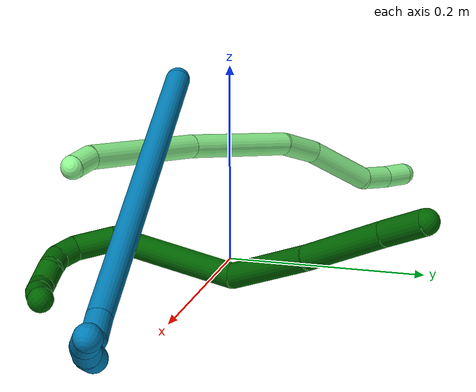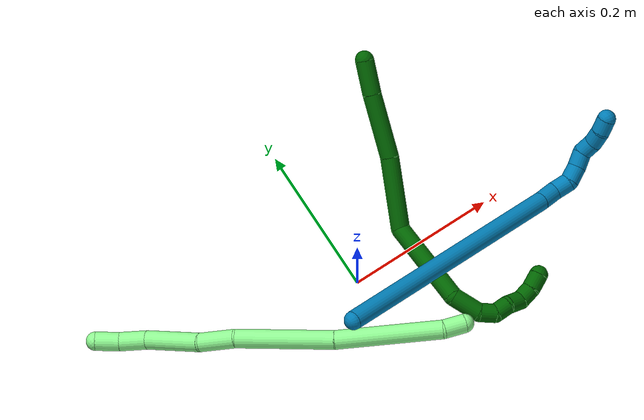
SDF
<sdf version="1.7">
 <world name="default">
  <model name="photoneo_s_sensor">
   <static>1</static>
   <pose>0 0 2 1.57079 1.57079 3.14159</pose>
   <link name="link">
    <inertial><mass>0.1</mass></inertial>
    <sensor name="sensor" type="depth">
     <update_rate>30</update_rate>
     <camera>
      <horizontal_fov>1.22</horizontal_fov>
      <image><width>1920</width><height>1200</height><format>B8G8R8</format></image>
      <clip><near>0.1</near><far>4</far></clip>
      <depth_camera><output>points</output></depth_camera>
     </camera>
     <plugin name="camera_plugin" filename="libgazebo_ros_depth_camera.so">
      <baseline>0.2</baseline>
      <alwaysOn>1</alwaysOn>
      <updateRate>0.0</updateRate>
      <cameraName>camera_ir</cameraName>
      <imageTopicName>/camera/color/image_raw</imageTopicName>
      <cameraInfoTopicName>/camera/color/camera_info</cameraInfoTopicName>
      <depthImageTopicName>/camera/depth/image_raw</depthImageTopicName>
      <depthImageCameraInfoTopicName>/camera/depth/camera_info</depthImageCameraInfoTopicName>
      <pointCloudTopicName>/camera/depth/points</pointCloudTopicName>
      <frameName>fr_optical</frameName>
      <pointCloudCutoff>0.1</pointCloudCutoff>
      <pointCloudCutoffMax>2.0</pointCloudCutoffMax>
      <distortionK1>0</distortionK1>
      <distortionK2>0</distortionK2>
      <distortionK3>0</distortionK3>
      <distortionT1>0</distortionT1>
      <distortionT2>0</distortionT2>
      <CxPrime>0</CxPrime>
      <Cx>0</Cx>
      <Cy>0</Cy>
      <focalLength>0</focalLength>
      <hackBaseline>0</hackBaseline>
     </plugin>
    </sensor>
   </link>
  </model>
  <model name="bin">
   <static>1</static>
   <link name="bottom">
    <collision name="collision-bottom">
     <pose>0 0 -0.01 0 -0 0</pose>
     <geometry><box><size>0.8 0.6 0.02</size></box></geometry>
     <surface>
      <friction><ode><mu>100</mu><mu2>100</mu2></ode></friction>
      <contact><collide_bitmask>65535</collide_bitmask></contact>
     </surface>
    </collision>
   </link>
   <link name="west_wall">
    <collision name="collision-west_wall">
     <pose>-0.41 0 0.1 0 -0 0</pose>
     <geometry><box><size>0.02 0.6 0.2</size></box></geometry>
     <surface>
      <friction><ode><mu>100</mu><mu2>100</mu2></ode></friction>
      <contact><collide_bitmask>65535</collide_bitmask></contact>
     </surface>
    </collision>
   </link>
   <link name="east_wall">
    <collision name="collision-east_wall">
     <pose>0.41 0 0.1 0 -0 0</pose>
     <geometry><box><size>0.02 0.6 0.2</size></box></geometry>
     <surface>
      <friction><ode><mu>100</mu><mu2>100</mu2></ode></friction>
      <contact><collide_bitmask>65535</collide_bitmask></contact>
     </surface>
    </collision>
   </link>
   <link name="south_wall">
    <collision name="collision-south_wall">
     <pose>0 -0.31 0.1 0 -0 0</pose>
     <geometry><box><size>0.8 0.02 0.2</size></box></geometry>
     <surface>
      <friction><ode><mu>100</mu><mu2>100</mu2></ode></friction>
      <contact><collide_bitmask>65535</collide_bitmask></contact>
     </surface>
    </collision>
   </link>
   <link name="north_wall">
    <collision name="collision-north_wall">
     <pose>0 0.31 0.1 0 -0 0</pose>
     <geometry><box><size>0.8 0.02 0.2</size></box></geometry>
     <surface>
      <friction><ode><mu>100</mu><mu2>100</mu2></ode></friction>
      <contact><collide_bitmask>65535</collide_bitmask></contact>
     </surface>
    </collision>
   </link>
  </model>
  <model name="6">
   <static>0</static>
   <link name="6">
    <collision name="collision-cylinder-e_1_1_4">
     <pose>-0.006928 -0.010879 -0.019028 2.6222 -0.306144 -1.05216</pose>
     <geometry><cylinder><radius>0.0125</radius><length>0.045975</length></cylinder></geometry>
     <surface>
      <friction><ode><mu>1.16</mu><mu2>1.16</mu2><slip1>0</slip1><slip2>0</slip2></ode></friction>
      <contact><ode><kp>1e+06</kp><kd>1</kd><max_vel>0</max_vel><min_depth>0.001</min_depth></ode></contact>
     </surface>
    </collision>
    <visual name="visual-cylinder-e_1_1_4">
     <pose>-0.006928 -0.010879 -0.019028 2.6222 -0.306144 -1.05216</pose>
     <geometry><cylinder><radius>0.0125</radius><length>0.045975</length></cylinder></geometry>
     <material><ambient>0 0.392157 0.003922 1</ambient></material>
    </visual>
    <collision name="collision-cylinder-e_2_4_5">
     <pose>-0.024812 -0.041335 -0.075236 2.65695 -0.255057 -0.957074</pose>
     <geometry><cylinder><radius>0.0125</radius><length>0.086847</length></cylinder></geometry>
     <surface>
      <friction><ode><mu>1.16</mu><mu2>1.16</mu2><slip1>0</slip1><slip2>0</slip2></ode></friction>
      <contact><ode><kp>1e+06</kp><kd>1</kd><max_vel>0</max_vel><min_depth>0.001</min_depth></ode></contact>
     </surface>
    </collision>
    <visual name="visual-cylinder-e_2_4_5">
     <pose>-0.024812 -0.041335 -0.075236 2.65695 -0.255057 -0.957074</pose>
     <geometry><cylinder><radius>0.0125</radius><length>0.086847</length></cylinder></geometry>
     <material><ambient>0 0.392157 0.003922 1</ambient></material>
    </visual>
    <collision name="collision-cylinder-e_3_5_6">
     <pose>-0.053001 -0.085032 -0.15099 2.58277 -0.362098 -1.13579</pose>
     <geometry><cylinder><radius>0.0125</radius><length>0.0973</length></cylinder></geometry>
     <surface>
      <friction><ode><mu>1.16</mu><mu2>1.16</mu2><slip1>0</slip1><slip2>0</slip2></ode></friction>
      <contact><ode><kp>1e+06</kp><kd>1</kd><max_vel>0</max_vel><min_depth>0.001</min_depth></ode></contact>
     </surface>
    </collision>
    <visual name="visual-cylinder-e_3_5_6">
     <pose>-0.053001 -0.085032 -0.15099 2.58277 -0.362098 -1.13579</pose>
     <geometry><cylinder><radius>0.0125</radius><length>0.0973</length></cylinder></geometry>
     <material><ambient>0 0.392157 0.003922 1</ambient></material>
    </visual>
    <collision name="collision-cylinder-e_4_6_7">
     <pose>-0.05392 -0.158903 -0.221415 2.14025 0.269463 0.485686</pose>
     <geometry><cylinder><radius>0.0125</radius><length>0.122567</length></cylinder></geometry>
     <surface>
      <friction><ode><mu>1.16</mu><mu2>1.16</mu2><slip1>0</slip1><slip2>0</slip2></ode></friction>
      <contact><ode><kp>1e+06</kp><kd>1</kd><max_vel>0</max_vel><min_depth>0.001</min_depth></ode></contact>
     </surface>
    </collision>
    <visual name="visual-cylinder-e_4_6_7">
     <pose>-0.05392 -0.158903 -0.221415 2.14025 0.269463 0.485686</pose>
     <geometry><cylinder><radius>0.0125</radius><length>0.122567</length></cylinder></geometry>
     <material><ambient>0 0.392157 0.003922 1</ambient></material>
    </visual>
    <collision name="collision-cylinder-e_5_7_8">
     <pose>-0.02838 -0.215314 -0.26933 2.74857 0.487737 1.79199</pose>
     <geometry><cylinder><radius>0.0125</radius><length>0.039373</length></cylinder></geometry>
     <surface>
      <friction><ode><mu>1.16</mu><mu2>1.16</mu2><slip1>0</slip1><slip2>0</slip2></ode></friction>
      <contact><ode><kp>1e+06</kp><kd>1</kd><max_vel>0</max_vel><min_depth>0.001</min_depth></ode></contact>
     </surface>
    </collision>
    <visual name="visual-cylinder-e_5_7_8">
     <pose>-0.02838 -0.215314 -0.26933 2.74857 0.487737 1.79199</pose>
     <geometry><cylinder><radius>0.0125</radius><length>0.039373</length></cylinder></geometry>
     <material><ambient>0 0.392157 0.003922 1</ambient></material>
    </visual>
    <collision name="collision-cylinder-e_6_8_9">
     <pose>-0.010977 -0.221204 -0.292861 -3.03869 0.828198 -2.90832</pose>
     <geometry><cylinder><radius>0.0125</radius><length>0.0222</length></cylinder></geometry>
     <surface>
      <friction><ode><mu>1.16</mu><mu2>1.16</mu2><slip1>0</slip1><slip2>0</slip2></ode></friction>
      <contact><ode><kp>1e+06</kp><kd>1</kd><max_vel>0</max_vel><min_depth>0.001</min_depth></ode></contact>
     </surface>
    </collision>
    <visual name="visual-cylinder-e_6_8_9">
     <pose>-0.010977 -0.221204 -0.292861 -3.03869 0.828198 -2.90832</pose>
     <geometry><cylinder><radius>0.0125</radius><length>0.0222</length></cylinder></geometry>
     <material><ambient>0 0.392157 0.003922 1</ambient></material>
    </visual>
    <collision name="collision-cylinder-e_7_9_10">
     <pose>0.005592 -0.215173 -0.302873 -2.02168 0.962557 -1.38915</pose>
     <geometry><cylinder><radius>0.0125</radius><length>0.020451</length></cylinder></geometry>
     <surface>
      <friction><ode><mu>1.16</mu><mu2>1.16</mu2><slip1>0</slip1><slip2>0</slip2></ode></friction>
      <contact><ode><kp>1e+06</kp><kd>1</kd><max_vel>0</max_vel><min_depth>0.001</min_depth></ode></contact>
     </surface>
    </collision>
    <visual name="visual-cylinder-e_7_9_10">
     <pose>0.005592 -0.215173 -0.302873 -2.02168 0.962557 -1.38915</pose>
     <geometry><cylinder><radius>0.0125</radius><length>0.020451</length></cylinder></geometry>
     <material><ambient>0 0.392157 0.003922 1</ambient></material>
    </visual>
    <collision name="collision-cylinder-e_8_10_11">
     <pose>0.020826 -0.203056 -0.312041 -2.33868 0.622512 -1.29701</pose>
     <geometry><cylinder><radius>0.0125</radius><length>0.023468</length></cylinder></geometry>
     <surface>
      <friction><ode><mu>1.16</mu><mu2>1.16</mu2><slip1>0</slip1><slip2>0</slip2></ode></friction>
      <contact><ode><kp>1e+06</kp><kd>1</kd><max_vel>0</max_vel><min_depth>0.001</min_depth></ode></contact>
     </surface>
    </collision>
    <visual name="visual-cylinder-e_8_10_11">
     <pose>0.020826 -0.203056 -0.312041 -2.33868 0.622512 -1.29701</pose>
     <geometry><cylinder><radius>0.0125</radius><length>0.023468</length></cylinder></geometry>
     <material><ambient>0 0.392157 0.003922 1</ambient></material>
    </visual>
    <collision name="collision-cylinder-e_9_11_12">
     <pose>0.036421 -0.191025 -0.318312 -1.50305 1.03594 -0.978635</pose>
     <geometry><cylinder><radius>0.0125</radius><length>0.020348</length></cylinder></geometry>
     <surface>
      <friction><ode><mu>1.16</mu><mu2>1.16</mu2><slip1>0</slip1><slip2>0</slip2></ode></friction>
      <contact><ode><kp>1e+06</kp><kd>1</kd><max_vel>0</max_vel><min_depth>0.001</min_depth></ode></contact>
     </surface>
    </collision>
    <visual name="visual-cylinder-e_9_11_12">
     <pose>0.036421 -0.191025 -0.318312 -1.50305 1.03594 -0.978635</pose>
     <geometry><cylinder><radius>0.0125</radius><length>0.020348</length></cylinder></geometry>
     <material><ambient>0 0.392157 0.003922 1</ambient></material>
    </visual>
    <collision name="collision-cylinder-e_10_12_2">
     <pose>0.053218 -0.179103 -0.315723 -1.25055 0.847063 -0.62927</pose>
     <geometry><cylinder><radius>0.0125</radius><length>0.021471</length></cylinder></geometry>
     <surface>
      <friction><ode><mu>1.16</mu><mu2>1.16</mu2><slip1>0</slip1><slip2>0</slip2></ode></friction>
      <contact><ode><kp>1e+06</kp><kd>1</kd><max_vel>0</max_vel><min_depth>0.001</min_depth></ode></contact>
     </surface>
    </collision>
    <visual name="visual-cylinder-e_10_12_2">
     <pose>0.053218 -0.179103 -0.315723 -1.25055 0.847063 -0.62927</pose>
     <geometry><cylinder><radius>0.0125</radius><length>0.021471</length></cylinder></geometry>
     <material><ambient>0 0.392157 0.003922 1</ambient></material>
    </visual>
    <collision name="collision-sphere-2">
     <pose>0.061263 -0.172356 -0.313485 0 -0 0</pose>
     <geometry><sphere><radius>0.0125</radius></sphere></geometry>
     <surface>
      <friction><ode><mu>1.16</mu><mu2>1.16</mu2><slip1>0</slip1><slip2>0</slip2></ode></friction>
      <contact><ode><kp>1e+06</kp><kd>1</kd><max_vel>0</max_vel><min_depth>0.001</min_depth></ode></contact>
     </surface>
    </collision>
    <visual name="visual-sphere-2">
     <pose>0.061263 -0.172356 -0.313485 0 -0 0</pose>
     <geometry><sphere><radius>0.0125</radius></sphere></geometry>
     <material><ambient>0 0.392157 0.003922 1</ambient></material>
    </visual>
    <collision name="collision-sphere-12">
     <pose>0.045174 -0.185851 -0.317961 0 -0 0</pose>
     <geometry><sphere><radius>0.0125</radius></sphere></geometry>
     <surface>
      <friction><ode><mu>1.16</mu><mu2>1.16</mu2><slip1>0</slip1><slip2>0</slip2></ode></friction>
      <contact><ode><kp>1e+06</kp><kd>1</kd><max_vel>0</max_vel><min_depth>0.001</min_depth></ode></contact>
     </surface>
    </collision>
    <visual name="visual-sphere-12">
     <pose>0.045174 -0.185851 -0.317961 0 -0 0</pose>
     <geometry><sphere><radius>0.0125</radius></sphere></geometry>
     <material><ambient>0 0.392157 0.003922 1</ambient></material>
    </visual>
    <collision name="collision-sphere-11">
     <pose>0.027668 -0.196199 -0.318663 0 -0 0</pose>
     <geometry><sphere><radius>0.0125</radius></sphere></geometry>
     <surface>
      <friction><ode><mu>1.16</mu><mu2>1.16</mu2><slip1>0</slip1><slip2>0</slip2></ode></friction>
      <contact><ode><kp>1e+06</kp><kd>1</kd><max_vel>0</max_vel><min_depth>0.001</min_depth></ode></contact>
     </surface>
    </collision>
    <visual name="visual-sphere-11">
     <pose>0.027668 -0.196199 -0.318663 0 -0 0</pose>
     <geometry><sphere><radius>0.0125</radius></sphere></geometry>
     <material><ambient>0 0.392157 0.003922 1</ambient></material>
    </visual>
    <collision name="collision-sphere-10">
     <pose>0.013984 -0.209914 -0.30542 0 -0 0</pose>
     <geometry><sphere><radius>0.0125</radius></sphere></geometry>
     <surface>
      <friction><ode><mu>1.16</mu><mu2>1.16</mu2><slip1>0</slip1><slip2>0</slip2></ode></friction>
      <contact><ode><kp>1e+06</kp><kd>1</kd><max_vel>0</max_vel><min_depth>0.001</min_depth></ode></contact>
     </surface>
    </collision>
    <visual name="visual-sphere-10">
     <pose>0.013984 -0.209914 -0.30542 0 -0 0</pose>
     <geometry><sphere><radius>0.0125</radius></sphere></geometry>
     <material><ambient>0 0.392157 0.003922 1</ambient></material>
    </visual>
    <collision name="collision-sphere-9">
     <pose>-0.0028 -0.220433 -0.300327 0 -0 0</pose>
     <geometry><sphere><radius>0.0125</radius></sphere></geometry>
     <surface>
      <friction><ode><mu>1.16</mu><mu2>1.16</mu2><slip1>0</slip1><slip2>0</slip2></ode></friction>
      <contact><ode><kp>1e+06</kp><kd>1</kd><max_vel>0</max_vel><min_depth>0.001</min_depth></ode></contact>
     </surface>
    </collision>
    <visual name="visual-sphere-9">
     <pose>-0.0028 -0.220433 -0.300327 0 -0 0</pose>
     <geometry><sphere><radius>0.0125</radius></sphere></geometry>
     <material><ambient>0 0.392157 0.003922 1</ambient></material>
    </visual>
    <collision name="collision-sphere-4">
     <pose>-0.013856 -0.021759 -0.038056 0 -0 0</pose>
     <geometry><sphere><radius>0.0125</radius></sphere></geometry>
     <surface>
      <friction><ode><mu>1.16</mu><mu2>1.16</mu2><slip1>0</slip1><slip2>0</slip2></ode></friction>
      <contact><ode><kp>1e+06</kp><kd>1</kd><max_vel>0</max_vel><min_depth>0.001</min_depth></ode></contact>
     </surface>
    </collision>
    <visual name="visual-sphere-4">
     <pose>-0.013856 -0.021759 -0.038056 0 -0 0</pose>
     <geometry><sphere><radius>0.0125</radius></sphere></geometry>
     <material><ambient>0 0.392157 0.003922 1</ambient></material>
    </visual>
    <collision name="collision-sphere-1">
     <geometry><sphere><radius>0.0125</radius></sphere></geometry>
     <surface>
      <friction><ode><mu>1.16</mu><mu2>1.16</mu2><slip1>0</slip1><slip2>0</slip2></ode></friction>
      <contact><ode><kp>1e+06</kp><kd>1</kd><max_vel>0</max_vel><min_depth>0.001</min_depth></ode></contact>
     </surface>
    </collision>
    <visual name="visual-sphere-1">
     <geometry><sphere><radius>0.0125</radius></sphere></geometry>
     <material><ambient>0 0.392157 0.003922 1</ambient></material>
    </visual>
    <collision name="collision-sphere-8">
     <pose>-0.019154 -0.221975 -0.285395 0 -0 0</pose>
     <geometry><sphere><radius>0.0125</radius></sphere></geometry>
     <surface>
      <friction><ode><mu>1.16</mu><mu2>1.16</mu2><slip1>0</slip1><slip2>0</slip2></ode></friction>
      <contact><ode><kp>1e+06</kp><kd>1</kd><max_vel>0</max_vel><min_depth>0.001</min_depth></ode></contact>
     </surface>
    </collision>
    <visual name="visual-sphere-8">
     <pose>-0.019154 -0.221975 -0.285395 0 -0 0</pose>
     <geometry><sphere><radius>0.0125</radius></sphere></geometry>
     <material><ambient>0 0.392157 0.003922 1</ambient></material>
    </visual>
    <collision name="collision-sphere-5">
     <pose>-0.035768 -0.060911 -0.112416 0 -0 0</pose>
     <geometry><sphere><radius>0.0125</radius></sphere></geometry>
     <surface>
      <friction><ode><mu>1.16</mu><mu2>1.16</mu2><slip1>0</slip1><slip2>0</slip2></ode></friction>
      <contact><ode><kp>1e+06</kp><kd>1</kd><max_vel>0</max_vel><min_depth>0.001</min_depth></ode></contact>
     </surface>
    </collision>
    <visual name="visual-sphere-5">
     <pose>-0.035768 -0.060911 -0.112416 0 -0 0</pose>
     <geometry><sphere><radius>0.0125</radius></sphere></geometry>
     <material><ambient>0 0.392157 0.003922 1</ambient></material>
    </visual>
    <collision name="collision-sphere-6">
     <pose>-0.070235 -0.109153 -0.189565 0 -0 0</pose>
     <geometry><sphere><radius>0.0125</radius></sphere></geometry>
     <surface>
      <friction><ode><mu>1.16</mu><mu2>1.16</mu2><slip1>0</slip1><slip2>0</slip2></ode></friction>
      <contact><ode><kp>1e+06</kp><kd>1</kd><max_vel>0</max_vel><min_depth>0.001</min_depth></ode></contact>
     </surface>
    </collision>
    <visual name="visual-sphere-6">
     <pose>-0.070235 -0.109153 -0.189565 0 -0 0</pose>
     <geometry><sphere><radius>0.0125</radius></sphere></geometry>
     <material><ambient>0 0.392157 0.003922 1</ambient></material>
    </visual>
    <collision name="collision-sphere-7">
     <pose>-0.037606 -0.208654 -0.253265 0 -0 0</pose>
     <geometry><sphere><radius>0.0125</radius></sphere></geometry>
     <surface>
      <friction><ode><mu>1.16</mu><mu2>1.16</mu2><slip1>0</slip1><slip2>0</slip2></ode></friction>
      <contact><ode><kp>1e+06</kp><kd>1</kd><max_vel>0</max_vel><min_depth>0.001</min_depth></ode></contact>
     </surface>
    </collision>
    <visual name="visual-sphere-7">
     <pose>-0.037606 -0.208654 -0.253265 0 -0 0</pose>
     <geometry><sphere><radius>0.0125</radius></sphere></geometry>
     <material><ambient>0 0.392157 0.003922 1</ambient></material>
    </visual>
    <inertial>
     <pose>-0.026227 -0.124253 -0.186234 0 -0 0</pose>
     <mass>0.5</mass>
     <inertia>
      <ixx>0.000158</ixx>
      <ixy>0</ixy>
      <ixz>0</ixz>
      <iyy>-0.000156</iyy>
      <iyz>0</iyz>
      <izz>0.000168</izz>
     </inertia>
    </inertial>
   </link>
   <pose>0.157487 0.225689 0.102989 -0.721284 -0.385159 -0.162682</pose>
  </model>
  <model name="9">
   <static>0</static>
   <link name="9">
    <collision name="collision-cylinder-e_1_1_4">
     <pose>0.010659 -0.004254 0.172864 0.024606 0.061563 0.000758</pose>
     <geometry><cylinder><radius>0.0125</radius><length>0.346488</length></cylinder></geometry>
     <surface>
      <friction><ode><mu>1.16</mu><mu2>1.16</mu2><slip1>0</slip1><slip2>0</slip2></ode></friction>
      <contact><ode><kp>1e+06</kp><kd>1</kd><max_vel>0</max_vel><min_depth>0.001</min_depth></ode></contact>
     </surface>
    </collision>
    <visual name="visual-cylinder-e_1_1_4">
     <pose>0.010659 -0.004254 0.172864 0.024606 0.061563 0.000758</pose>
     <geometry><cylinder><radius>0.0125</radius><length>0.346488</length></cylinder></geometry>
     <material><ambient>0 0.490196 0.709804 1</ambient></material>
    </visual>
    <collision name="collision-cylinder-e_2_4_5">
     <pose>0.022976 -0.009307 0.359129 0.059473 0.122949 0.003662</pose>
     <geometry><cylinder><radius>0.0125</radius><length>0.027055</length></cylinder></geometry>
     <surface>
      <friction><ode><mu>1.16</mu><mu2>1.16</mu2><slip1>0</slip1><slip2>0</slip2></ode></friction>
      <contact><ode><kp>1e+06</kp><kd>1</kd><max_vel>0</max_vel><min_depth>0.001</min_depth></ode></contact>
     </surface>
    </collision>
    <visual name="visual-cylinder-e_2_4_5">
     <pose>0.022976 -0.009307 0.359129 0.059473 0.122949 0.003662</pose>
     <geometry><cylinder><radius>0.0125</radius><length>0.027055</length></cylinder></geometry>
     <material><ambient>0 0.490196 0.709804 1</ambient></material>
    </visual>
    <collision name="collision-cylinder-e_3_5_6">
     <pose>0.029357 -0.006057 0.382213 -0.395982 0.42274 -0.086043</pose>
     <geometry><cylinder><radius>0.0125</radius><length>0.023015</length></cylinder></geometry>
     <surface>
      <friction><ode><mu>1.16</mu><mu2>1.16</mu2><slip1>0</slip1><slip2>0</slip2></ode></friction>
      <contact><ode><kp>1e+06</kp><kd>1</kd><max_vel>0</max_vel><min_depth>0.001</min_depth></ode></contact>
     </surface>
    </collision>
    <visual name="visual-cylinder-e_3_5_6">
     <pose>0.029357 -0.006057 0.382213 -0.395982 0.42274 -0.086043</pose>
     <geometry><cylinder><radius>0.0125</radius><length>0.023015</length></cylinder></geometry>
     <material><ambient>0 0.490196 0.709804 1</ambient></material>
    </visual>
    <collision name="collision-cylinder-e_4_6_7">
     <pose>0.040827 -0.003578 0.400513 0.180103 0.656561 0.061491</pose>
     <geometry><cylinder><radius>0.0125</radius><length>0.022116</length></cylinder></geometry>
     <surface>
      <friction><ode><mu>1.16</mu><mu2>1.16</mu2><slip1>0</slip1><slip2>0</slip2></ode></friction>
      <contact><ode><kp>1e+06</kp><kd>1</kd><max_vel>0</max_vel><min_depth>0.001</min_depth></ode></contact>
     </surface>
    </collision>
    <visual name="visual-cylinder-e_4_6_7">
     <pose>0.040827 -0.003578 0.400513 0.180103 0.656561 0.061491</pose>
     <geometry><cylinder><radius>0.0125</radius><length>0.022116</length></cylinder></geometry>
     <material><ambient>0 0.490196 0.709804 1</ambient></material>
    </visual>
    <collision name="collision-cylinder-e_5_7_8">
     <pose>0.055977 -0.006318 0.415533 0.180956 0.911599 0.088894</pose>
     <geometry><cylinder><radius>0.0125</radius><length>0.021253</length></cylinder></geometry>
     <surface>
      <friction><ode><mu>1.16</mu><mu2>1.16</mu2><slip1>0</slip1><slip2>0</slip2></ode></friction>
      <contact><ode><kp>1e+06</kp><kd>1</kd><max_vel>0</max_vel><min_depth>0.001</min_depth></ode></contact>
     </surface>
    </collision>
    <visual name="visual-cylinder-e_5_7_8">
     <pose>0.055977 -0.006318 0.415533 0.180956 0.911599 0.088894</pose>
     <geometry><cylinder><radius>0.0125</radius><length>0.021253</length></cylinder></geometry>
     <material><ambient>0 0.490196 0.709804 1</ambient></material>
    </visual>
    <collision name="collision-cylinder-e_6_8_9">
     <pose>0.071478 -0.002779 0.427172 -0.732516 0.789373 -0.316865</pose>
     <geometry><cylinder><radius>0.0125</radius><length>0.020004</length></cylinder></geometry>
     <surface>
      <friction><ode><mu>1.16</mu><mu2>1.16</mu2><slip1>0</slip1><slip2>0</slip2></ode></friction>
      <contact><ode><kp>1e+06</kp><kd>1</kd><max_vel>0</max_vel><min_depth>0.001</min_depth></ode></contact>
     </surface>
    </collision>
    <visual name="visual-cylinder-e_6_8_9">
     <pose>0.071478 -0.002779 0.427172 -0.732516 0.789373 -0.316865</pose>
     <geometry><cylinder><radius>0.0125</radius><length>0.020004</length></cylinder></geometry>
     <material><ambient>0 0.490196 0.709804 1</ambient></material>
    </visual>
    <collision name="collision-cylinder-e_7_9_10">
     <pose>0.087341 0.005908 0.435238 -0.952506 1.06271 -0.588761</pose>
     <geometry><cylinder><radius>0.0125</radius><length>0.020059</length></cylinder></geometry>
     <surface>
      <friction><ode><mu>1.16</mu><mu2>1.16</mu2><slip1>0</slip1><slip2>0</slip2></ode></friction>
      <contact><ode><kp>1e+06</kp><kd>1</kd><max_vel>0</max_vel><min_depth>0.001</min_depth></ode></contact>
     </surface>
    </collision>
    <visual name="visual-cylinder-e_7_9_10">
     <pose>0.087341 0.005908 0.435238 -0.952506 1.06271 -0.588761</pose>
     <geometry><cylinder><radius>0.0125</radius><length>0.020059</length></cylinder></geometry>
     <material><ambient>0 0.490196 0.709804 1</ambient></material>
    </visual>
    <collision name="collision-cylinder-e_8_10_2">
     <pose>0.105233 0.011745 0.441712 -0.471831 1.14929 -0.308848</pose>
     <geometry><cylinder><radius>0.0125</radius><length>0.020009</length></cylinder></geometry>
     <surface>
      <friction><ode><mu>1.16</mu><mu2>1.16</mu2><slip1>0</slip1><slip2>0</slip2></ode></friction>
      <contact><ode><kp>1e+06</kp><kd>1</kd><max_vel>0</max_vel><min_depth>0.001</min_depth></ode></contact>
     </surface>
    </collision>
    <visual name="visual-cylinder-e_8_10_2">
     <pose>0.105233 0.011745 0.441712 -0.471831 1.14929 -0.308848</pose>
     <geometry><cylinder><radius>0.0125</radius><length>0.020009</length></cylinder></geometry>
     <material><ambient>0 0.490196 0.709804 1</ambient></material>
    </visual>
    <collision name="collision-sphere-2">
     <pose>0.114361 0.013605 0.445358 0 -0 0</pose>
     <geometry><sphere><radius>0.0125</radius></sphere></geometry>
     <surface>
      <friction><ode><mu>1.16</mu><mu2>1.16</mu2><slip1>0</slip1><slip2>0</slip2></ode></friction>
      <contact><ode><kp>1e+06</kp><kd>1</kd><max_vel>0</max_vel><min_depth>0.001</min_depth></ode></contact>
     </surface>
    </collision>
    <visual name="visual-sphere-2">
     <pose>0.114361 0.013605 0.445358 0 -0 0</pose>
     <geometry><sphere><radius>0.0125</radius></sphere></geometry>
     <material><ambient>0 0.490196 0.709804 1</ambient></material>
    </visual>
    <collision name="collision-sphere-10">
     <pose>0.096104 0.009885 0.438066 0 -0 0</pose>
     <geometry><sphere><radius>0.0125</radius></sphere></geometry>
     <surface>
      <friction><ode><mu>1.16</mu><mu2>1.16</mu2><slip1>0</slip1><slip2>0</slip2></ode></friction>
      <contact><ode><kp>1e+06</kp><kd>1</kd><max_vel>0</max_vel><min_depth>0.001</min_depth></ode></contact>
     </surface>
    </collision>
    <visual name="visual-sphere-10">
     <pose>0.096104 0.009885 0.438066 0 -0 0</pose>
     <geometry><sphere><radius>0.0125</radius></sphere></geometry>
     <material><ambient>0 0.490196 0.709804 1</ambient></material>
    </visual>
    <collision name="collision-sphere-9">
     <pose>0.078578 0.001932 0.43241 0 -0 0</pose>
     <geometry><sphere><radius>0.0125</radius></sphere></geometry>
     <surface>
      <friction><ode><mu>1.16</mu><mu2>1.16</mu2><slip1>0</slip1><slip2>0</slip2></ode></friction>
      <contact><ode><kp>1e+06</kp><kd>1</kd><max_vel>0</max_vel><min_depth>0.001</min_depth></ode></contact>
     </surface>
    </collision>
    <visual name="visual-sphere-9">
     <pose>0.078578 0.001932 0.43241 0 -0 0</pose>
     <geometry><sphere><radius>0.0125</radius></sphere></geometry>
     <material><ambient>0 0.490196 0.709804 1</ambient></material>
    </visual>
    <collision name="collision-sphere-4">
     <pose>0.021317 -0.008509 0.345727 0 -0 0</pose>
     <geometry><sphere><radius>0.0125</radius></sphere></geometry>
     <surface>
      <friction><ode><mu>1.16</mu><mu2>1.16</mu2><slip1>0</slip1><slip2>0</slip2></ode></friction>
      <contact><ode><kp>1e+06</kp><kd>1</kd><max_vel>0</max_vel><min_depth>0.001</min_depth></ode></contact>
     </surface>
    </collision>
    <visual name="visual-sphere-4">
     <pose>0.021317 -0.008509 0.345727 0 -0 0</pose>
     <geometry><sphere><radius>0.0125</radius></sphere></geometry>
     <material><ambient>0 0.490196 0.709804 1</ambient></material>
    </visual>
    <collision name="collision-sphere-1">
     <geometry><sphere><radius>0.0125</radius></sphere></geometry>
     <surface>
      <friction><ode><mu>1.16</mu><mu2>1.16</mu2><slip1>0</slip1><slip2>0</slip2></ode></friction>
      <contact><ode><kp>1e+06</kp><kd>1</kd><max_vel>0</max_vel><min_depth>0.001</min_depth></ode></contact>
     </surface>
    </collision>
    <visual name="visual-sphere-1">
     <geometry><sphere><radius>0.0125</radius></sphere></geometry>
     <material><ambient>0 0.490196 0.709804 1</ambient></material>
    </visual>
    <collision name="collision-sphere-8">
     <pose>0.064377 -0.007489 0.421935 0 -0 0</pose>
     <geometry><sphere><radius>0.0125</radius></sphere></geometry>
     <surface>
      <friction><ode><mu>1.16</mu><mu2>1.16</mu2><slip1>0</slip1><slip2>0</slip2></ode></friction>
      <contact><ode><kp>1e+06</kp><kd>1</kd><max_vel>0</max_vel><min_depth>0.001</min_depth></ode></contact>
     </surface>
    </collision>
    <visual name="visual-sphere-8">
     <pose>0.064377 -0.007489 0.421935 0 -0 0</pose>
     <geometry><sphere><radius>0.0125</radius></sphere></geometry>
     <material><ambient>0 0.490196 0.709804 1</ambient></material>
    </visual>
    <collision name="collision-sphere-5">
     <pose>0.024635 -0.010105 0.372531 0 -0 0</pose>
     <geometry><sphere><radius>0.0125</radius></sphere></geometry>
     <surface>
      <friction><ode><mu>1.16</mu><mu2>1.16</mu2><slip1>0</slip1><slip2>0</slip2></ode></friction>
      <contact><ode><kp>1e+06</kp><kd>1</kd><max_vel>0</max_vel><min_depth>0.001</min_depth></ode></contact>
     </surface>
    </collision>
    <visual name="visual-sphere-5">
     <pose>0.024635 -0.010105 0.372531 0 -0 0</pose>
     <geometry><sphere><radius>0.0125</radius></sphere></geometry>
     <material><ambient>0 0.490196 0.709804 1</ambient></material>
    </visual>
    <collision name="collision-sphere-6">
     <pose>0.034078 -0.002009 0.391896 0 -0 0</pose>
     <geometry><sphere><radius>0.0125</radius></sphere></geometry>
     <surface>
      <friction><ode><mu>1.16</mu><mu2>1.16</mu2><slip1>0</slip1><slip2>0</slip2></ode></friction>
      <contact><ode><kp>1e+06</kp><kd>1</kd><max_vel>0</max_vel><min_depth>0.001</min_depth></ode></contact>
     </surface>
    </collision>
    <visual name="visual-sphere-6">
     <pose>0.034078 -0.002009 0.391896 0 -0 0</pose>
     <geometry><sphere><radius>0.0125</radius></sphere></geometry>
     <material><ambient>0 0.490196 0.709804 1</ambient></material>
    </visual>
    <collision name="collision-sphere-7">
     <pose>0.047577 -0.005147 0.40913 0 -0 0</pose>
     <geometry><sphere><radius>0.0125</radius></sphere></geometry>
     <surface>
      <friction><ode><mu>1.16</mu><mu2>1.16</mu2><slip1>0</slip1><slip2>0</slip2></ode></friction>
      <contact><ode><kp>1e+06</kp><kd>1</kd><max_vel>0</max_vel><min_depth>0.001</min_depth></ode></contact>
     </surface>
    </collision>
    <visual name="visual-sphere-7">
     <pose>0.047577 -0.005147 0.40913 0 -0 0</pose>
     <geometry><sphere><radius>0.0125</radius></sphere></geometry>
     <material><ambient>0 0.490196 0.709804 1</ambient></material>
    </visual>
    <inertial>
     <pose>0.024741 -0.003561 0.244422 0 -0 0</pose>
     <mass>0.5</mass>
     <inertia>
      <ixx>0.003493</ixx>
      <ixy>0</ixy>
      <ixz>0</ixz>
      <iyy>0.003494</iyy>
      <iyz>0</iyz>
      <izz>-0.000103</izz>
     </inertia>
    </inertial>
   </link>
   <pose>-0.051747 -0.071218 0.172031 2.29727 -0.80245 1.02868</pose>
  </model>
  <model name="13">
   <static>0</static>
   <link name="13">
    <collision name="collision-cylinder-e_1_1_4">
     <pose>-0.001458 0.008861 0.011198 -0.669394 -0.101776 0.035423</pose>
     <geometry><cylinder><radius>0.0125</radius><length>0.028709</length></cylinder></geometry>
     <surface>
      <friction><ode><mu>1.16</mu><mu2>1.16</mu2><slip1>0</slip1><slip2>0</slip2></ode></friction>
      <contact><ode><kp>1e+06</kp><kd>1</kd><max_vel>0</max_vel><min_depth>0.001</min_depth></ode></contact>
     </surface>
    </collision>
    <visual name="visual-cylinder-e_1_1_4">
     <pose>-0.001458 0.008861 0.011198 -0.669394 -0.101776 0.035423</pose>
     <geometry><cylinder><radius>0.0125</radius><length>0.028709</length></cylinder></geometry>
     <material><ambient>0.564706 0.984314 0.572549 1</ambient></material>
    </visual>
    <collision name="collision-cylinder-e_2_4_5">
     <pose>-0.030695 0.052094 0.077128 -0.56077 -0.40594 0.118393</pose>
     <geometry><cylinder><radius>0.0125</radius><length>0.140692</length></cylinder></geometry>
     <surface>
      <friction><ode><mu>1.16</mu><mu2>1.16</mu2><slip1>0</slip1><slip2>0</slip2></ode></friction>
      <contact><ode><kp>1e+06</kp><kd>1</kd><max_vel>0</max_vel><min_depth>0.001</min_depth></ode></contact>
     </surface>
    </collision>
    <visual name="visual-cylinder-e_2_4_5">
     <pose>-0.030695 0.052094 0.077128 -0.56077 -0.40594 0.118393</pose>
     <geometry><cylinder><radius>0.0125</radius><length>0.140692</length></cylinder></geometry>
     <material><ambient>0.564706 0.984314 0.572549 1</ambient></material>
    </visual>
    <collision name="collision-cylinder-e_3_5_6">
     <pose>-0.091305 0.117066 0.178661 -0.579047 -0.530906 0.161624</pose>
     <geometry><cylinder><radius>0.0125</radius><length>0.129688</length></cylinder></geometry>
     <surface>
      <friction><ode><mu>1.16</mu><mu2>1.16</mu2><slip1>0</slip1><slip2>0</slip2></ode></friction>
      <contact><ode><kp>1e+06</kp><kd>1</kd><max_vel>0</max_vel><min_depth>0.001</min_depth></ode></contact>
     </surface>
    </collision>
    <visual name="visual-cylinder-e_3_5_6">
     <pose>-0.091305 0.117066 0.178661 -0.579047 -0.530906 0.161624</pose>
     <geometry><cylinder><radius>0.0125</radius><length>0.129688</length></cylinder></geometry>
     <material><ambient>0.564706 0.984314 0.572549 1</ambient></material>
    </visual>
    <collision name="collision-cylinder-e_4_6_7">
     <pose>-0.136749 0.154041 0.245601 -0.306601 -0.538311 0.085193</pose>
     <geometry><cylinder><radius>0.0125</radius><length>0.049202</length></cylinder></geometry>
     <surface>
      <friction><ode><mu>1.16</mu><mu2>1.16</mu2><slip1>0</slip1><slip2>0</slip2></ode></friction>
      <contact><ode><kp>1e+06</kp><kd>1</kd><max_vel>0</max_vel><min_depth>0.001</min_depth></ode></contact>
     </surface>
    </collision>
    <visual name="visual-cylinder-e_4_6_7">
     <pose>-0.136749 0.154041 0.245601 -0.306601 -0.538311 0.085193</pose>
     <geometry><cylinder><radius>0.0125</radius><length>0.049202</length></cylinder></geometry>
     <material><ambient>0.564706 0.984314 0.572549 1</ambient></material>
    </visual>
    <collision name="collision-cylinder-e_5_7_8">
     <pose>-0.177694 0.164713 0.295504 -0.143361 -0.755565 0.056974</pose>
     <geometry><cylinder><radius>0.0125</radius><length>0.082638</length></cylinder></geometry>
     <surface>
      <friction><ode><mu>1.16</mu><mu2>1.16</mu2><slip1>0</slip1><slip2>0</slip2></ode></friction>
      <contact><ode><kp>1e+06</kp><kd>1</kd><max_vel>0</max_vel><min_depth>0.001</min_depth></ode></contact>
     </surface>
    </collision>
    <visual name="visual-cylinder-e_5_7_8">
     <pose>-0.177694 0.164713 0.295504 -0.143361 -0.755565 0.056974</pose>
     <geometry><cylinder><radius>0.0125</radius><length>0.082638</length></cylinder></geometry>
     <material><ambient>0.564706 0.984314 0.572549 1</ambient></material>
    </visual>
    <collision name="collision-cylinder-e_6_8_9">
     <pose>-0.214265 0.177498 0.339528 -0.536979 -0.460859 0.128911</pose>
     <geometry><cylinder><radius>0.0125</radius><length>0.03705</length></cylinder></geometry>
     <surface>
      <friction><ode><mu>1.16</mu><mu2>1.16</mu2><slip1>0</slip1><slip2>0</slip2></ode></friction>
      <contact><ode><kp>1e+06</kp><kd>1</kd><max_vel>0</max_vel><min_depth>0.001</min_depth></ode></contact>
     </surface>
    </collision>
    <visual name="visual-cylinder-e_6_8_9">
     <pose>-0.214265 0.177498 0.339528 -0.536979 -0.460859 0.128911</pose>
     <geometry><cylinder><radius>0.0125</radius><length>0.03705</length></cylinder></geometry>
     <material><ambient>0.564706 0.984314 0.572549 1</ambient></material>
    </visual>
    <collision name="collision-cylinder-e_7_9_2">
     <pose>-0.230078 0.19458 0.36497 -0.655194 -0.492773 0.170524</pose>
     <geometry><cylinder><radius>0.0125</radius><length>0.032021</length></cylinder></geometry>
     <surface>
      <friction><ode><mu>1.16</mu><mu2>1.16</mu2><slip1>0</slip1><slip2>0</slip2></ode></friction>
      <contact><ode><kp>1e+06</kp><kd>1</kd><max_vel>0</max_vel><min_depth>0.001</min_depth></ode></contact>
     </surface>
    </collision>
    <visual name="visual-cylinder-e_7_9_2">
     <pose>-0.230078 0.19458 0.36497 -0.655194 -0.492773 0.170524</pose>
     <geometry><cylinder><radius>0.0125</radius><length>0.032021</length></cylinder></geometry>
     <material><ambient>0.564706 0.984314 0.572549 1</ambient></material>
    </visual>
    <collision name="collision-sphere-2">
     <pose>-0.237652 0.203175 0.376155 0 -0 0</pose>
     <geometry><sphere><radius>0.0125</radius></sphere></geometry>
     <surface>
      <friction><ode><mu>1.16</mu><mu2>1.16</mu2><slip1>0</slip1><slip2>0</slip2></ode></friction>
      <contact><ode><kp>1e+06</kp><kd>1</kd><max_vel>0</max_vel><min_depth>0.001</min_depth></ode></contact>
     </surface>
    </collision>
    <visual name="visual-sphere-2">
     <pose>-0.237652 0.203175 0.376155 0 -0 0</pose>
     <geometry><sphere><radius>0.0125</radius></sphere></geometry>
     <material><ambient>0.564706 0.984314 0.572549 1</ambient></material>
    </visual>
    <collision name="collision-sphere-9">
     <pose>-0.222504 0.185985 0.353786 0 -0 0</pose>
     <geometry><sphere><radius>0.0125</radius></sphere></geometry>
     <surface>
      <friction><ode><mu>1.16</mu><mu2>1.16</mu2><slip1>0</slip1><slip2>0</slip2></ode></friction>
      <contact><ode><kp>1e+06</kp><kd>1</kd><max_vel>0</max_vel><min_depth>0.001</min_depth></ode></contact>
     </surface>
    </collision>
    <visual name="visual-sphere-9">
     <pose>-0.222504 0.185985 0.353786 0 -0 0</pose>
     <geometry><sphere><radius>0.0125</radius></sphere></geometry>
     <material><ambient>0.564706 0.984314 0.572549 1</ambient></material>
    </visual>
    <collision name="collision-sphere-4">
     <pose>-0.002917 0.017722 0.022397 0 -0 0</pose>
     <geometry><sphere><radius>0.0125</radius></sphere></geometry>
     <surface>
      <friction><ode><mu>1.16</mu><mu2>1.16</mu2><slip1>0</slip1><slip2>0</slip2></ode></friction>
      <contact><ode><kp>1e+06</kp><kd>1</kd><max_vel>0</max_vel><min_depth>0.001</min_depth></ode></contact>
     </surface>
    </collision>
    <visual name="visual-sphere-4">
     <pose>-0.002917 0.017722 0.022397 0 -0 0</pose>
     <geometry><sphere><radius>0.0125</radius></sphere></geometry>
     <material><ambient>0.564706 0.984314 0.572549 1</ambient></material>
    </visual>
    <collision name="collision-sphere-1">
     <geometry><sphere><radius>0.0125</radius></sphere></geometry>
     <surface>
      <friction><ode><mu>1.16</mu><mu2>1.16</mu2><slip1>0</slip1><slip2>0</slip2></ode></friction>
      <contact><ode><kp>1e+06</kp><kd>1</kd><max_vel>0</max_vel><min_depth>0.001</min_depth></ode></contact>
     </surface>
    </collision>
    <visual name="visual-sphere-1">
     <geometry><sphere><radius>0.0125</radius></sphere></geometry>
     <material><ambient>0.564706 0.984314 0.572549 1</ambient></material>
    </visual>
    <collision name="collision-sphere-8">
     <pose>-0.206027 0.16901 0.325271 0 -0 0</pose>
     <geometry><sphere><radius>0.0125</radius></sphere></geometry>
     <surface>
      <friction><ode><mu>1.16</mu><mu2>1.16</mu2><slip1>0</slip1><slip2>0</slip2></ode></friction>
      <contact><ode><kp>1e+06</kp><kd>1</kd><max_vel>0</max_vel><min_depth>0.001</min_depth></ode></contact>
     </surface>
    </collision>
    <visual name="visual-sphere-8">
     <pose>-0.206027 0.16901 0.325271 0 -0 0</pose>
     <geometry><sphere><radius>0.0125</radius></sphere></geometry>
     <material><ambient>0.564706 0.984314 0.572549 1</ambient></material>
    </visual>
    <collision name="collision-sphere-5">
     <pose>-0.058474 0.086466 0.131859 0 -0 0</pose>
     <geometry><sphere><radius>0.0125</radius></sphere></geometry>
     <surface>
      <friction><ode><mu>1.16</mu><mu2>1.16</mu2><slip1>0</slip1><slip2>0</slip2></ode></friction>
      <contact><ode><kp>1e+06</kp><kd>1</kd><max_vel>0</max_vel><min_depth>0.001</min_depth></ode></contact>
     </surface>
    </collision>
    <visual name="visual-sphere-5">
     <pose>-0.058474 0.086466 0.131859 0 -0 0</pose>
     <geometry><sphere><radius>0.0125</radius></sphere></geometry>
     <material><ambient>0.564706 0.984314 0.572549 1</ambient></material>
    </visual>
    <collision name="collision-sphere-6">
     <pose>-0.124137 0.147666 0.225464 0 -0 0</pose>
     <geometry><sphere><radius>0.0125</radius></sphere></geometry>
     <surface>
      <friction><ode><mu>1.16</mu><mu2>1.16</mu2><slip1>0</slip1><slip2>0</slip2></ode></friction>
      <contact><ode><kp>1e+06</kp><kd>1</kd><max_vel>0</max_vel><min_depth>0.001</min_depth></ode></contact>
     </surface>
    </collision>
    <visual name="visual-sphere-6">
     <pose>-0.124137 0.147666 0.225464 0 -0 0</pose>
     <geometry><sphere><radius>0.0125</radius></sphere></geometry>
     <material><ambient>0.564706 0.984314 0.572549 1</ambient></material>
    </visual>
    <collision name="collision-sphere-7">
     <pose>-0.149362 0.160416 0.265737 0 -0 0</pose>
     <geometry><sphere><radius>0.0125</radius></sphere></geometry>
     <surface>
      <friction><ode><mu>1.16</mu><mu2>1.16</mu2><slip1>0</slip1><slip2>0</slip2></ode></friction>
      <contact><ode><kp>1e+06</kp><kd>1</kd><max_vel>0</max_vel><min_depth>0.001</min_depth></ode></contact>
     </surface>
    </collision>
    <visual name="visual-sphere-7">
     <pose>-0.149362 0.160416 0.265737 0 -0 0</pose>
     <geometry><sphere><radius>0.0125</radius></sphere></geometry>
     <material><ambient>0.564706 0.984314 0.572549 1</ambient></material>
    </visual>
    <inertial>
     <pose>-0.10584 0.113527 0.190226 0 -0 0</pose>
     <mass>0.5</mass>
     <inertia>
      <ixx>0.000471</ixx>
      <ixy>0</ixy>
      <ixz>0</ixz>
      <iyy>0.000512</iyy>
      <iyz>0</iyz>
      <izz>4.4e-05</izz>
     </inertia>
    </inertial>
   </link>
   <pose>0.073454 -0.139822 0.105086 2.05398 -0.425902 -1.6655</pose>
  </model>
 </world>
</sdf>
